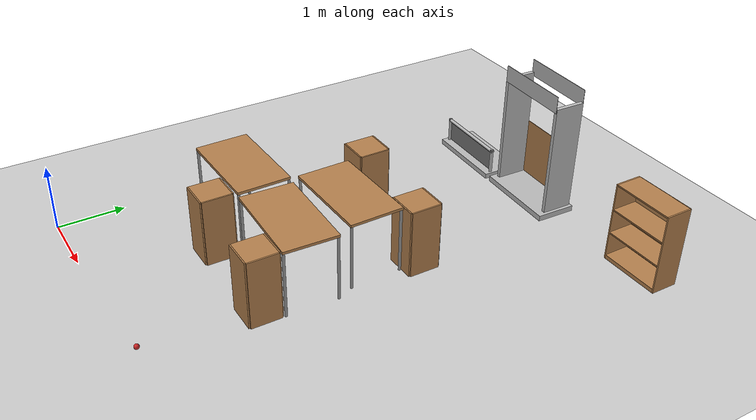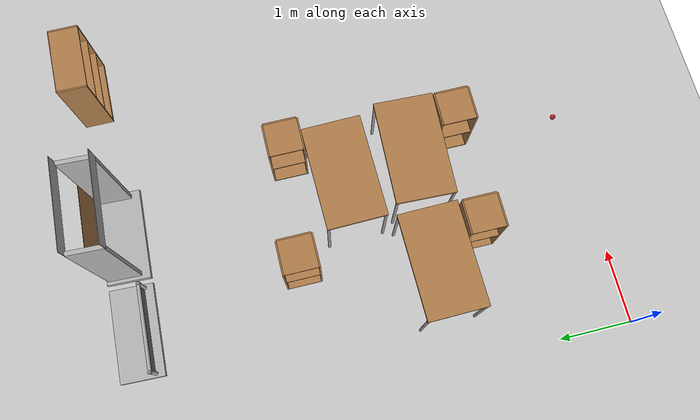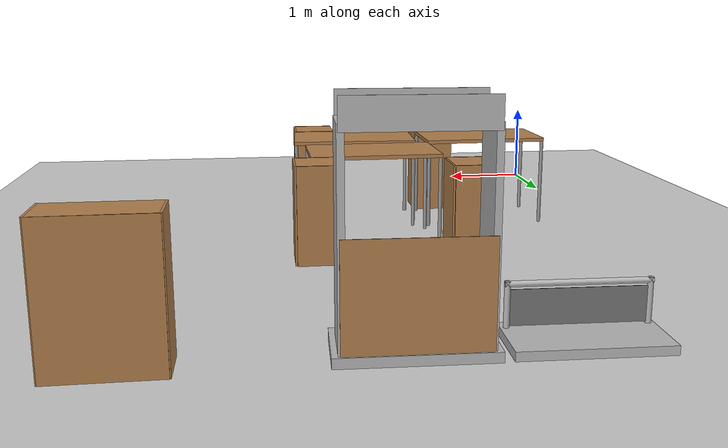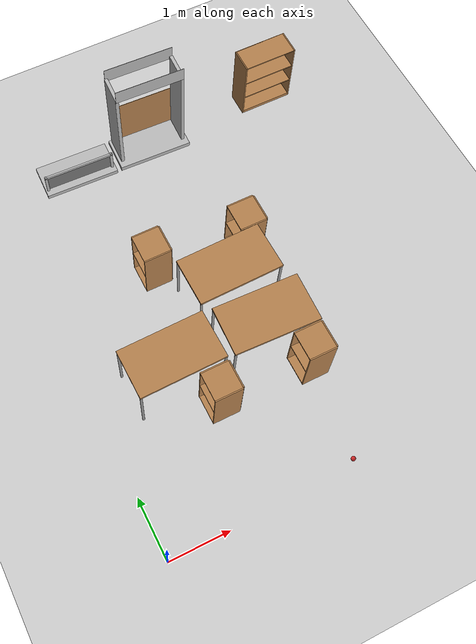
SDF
<sdf version="1.6">
 <world name="default">
  <model name="ground_plane">
   <static>1</static>
   <link name="link">
    <collision name="collision">
     <geometry><plane><normal>0 0 1</normal><size>100 100</size></plane></geometry>
     <surface><friction><ode><mu>100</mu><mu2>50</mu2></ode></friction></surface>
    </collision>
    <visual name="visual">
     <cast_shadows>0</cast_shadows>
     <geometry><plane><normal>0 0 1</normal><size>100 100</size></plane></geometry>
     <material>
      <script><uri>file://media/materials/scripts/gazebo.material</uri><name>Gazebo/Grey</name></script>
     </material>
    </visual>
   </link>
  </model>
  <model name="table_7_clone_1">
   <static>0</static>
   <link name="link">
    <collision name="surface">
     <pose>0 0 1 0 -0 0</pose>
     <geometry><box><size>1.5 0.8 0.03</size></box></geometry>
     <surface><friction><ode><mu>0.6</mu><mu2>0.6</mu2></ode></friction></surface>
    </collision>
    <visual name="visual1">
     <pose>0 0 1 0 -0 0</pose>
     <geometry><box><size>1.4 0.8 0.04</size></box></geometry>
     <material>
      <script><uri>file://media/materials/scripts/gazebo.material</uri><name>Gazebo/Wood</name></script>
     </material>
    </visual>
    <collision name="front_left_leg">
     <pose>0.68 0.38 0.5 0 -0 0</pose>
     <geometry><cylinder><radius>0.02</radius><length>1</length></cylinder></geometry>
    </collision>
    <visual name="front_left_leg">
     <pose>0.68 0.38 0.5 0 -0 0</pose>
     <geometry><cylinder><radius>0.02</radius><length>1</length></cylinder></geometry>
     <material>
      <script><uri>file://media/materials/scripts/gazebo.material</uri><name>Gazebo/Grey</name></script>
     </material>
    </visual>
    <collision name="front_right_leg">
     <pose>0.68 -0.38 0.5 0 -0 0</pose>
     <geometry><cylinder><radius>0.02</radius><length>1</length></cylinder></geometry>
    </collision>
    <visual name="front_right_leg">
     <pose>0.68 -0.38 0.5 0 -0 0</pose>
     <geometry><cylinder><radius>0.02</radius><length>1</length></cylinder></geometry>
     <material>
      <script><uri>file://media/materials/scripts/gazebo.material</uri><name>Gazebo/Grey</name></script>
     </material>
    </visual>
    <collision name="back_right_leg">
     <pose>-0.68 -0.38 0.5 0 -0 0</pose>
     <geometry><cylinder><radius>0.02</radius><length>1</length></cylinder></geometry>
    </collision>
    <visual name="back_right_leg">
     <pose>-0.68 -0.38 0.5 0 -0 0</pose>
     <geometry><cylinder><radius>0.02</radius><length>1</length></cylinder></geometry>
     <material>
      <script><uri>file://media/materials/scripts/gazebo.material</uri><name>Gazebo/Grey</name></script>
     </material>
    </visual>
    <collision name="back_left_leg">
     <pose>-0.68 0.38 0.5 0 -0 0</pose>
     <geometry><cylinder><radius>0.02</radius><length>1</length></cylinder></geometry>
    </collision>
    <visual name="back_left_leg">
     <pose>-0.68 0.38 0.5 0 -0 0</pose>
     <geometry><cylinder><radius>0.02</radius><length>1</length></cylinder></geometry>
     <material>
      <script><uri>file://media/materials/scripts/gazebo.material</uri><name>Gazebo/Grey</name></script>
     </material>
    </visual>
    <inertial>
     <inertia><ixx>1</ixx><ixy>0</ixy><ixz>0</ixz><iyy>1</iyy><iyz>0</iyz><izz>1</izz></inertia>
     <mass>1</mass>
    </inertial>
   </link>
   <pose>1.25203 2.42217 -9e-06 0 -1e-06 0.016683</pose>
  </model>
  <model name="bookshelf">
   <static>1</static>
   <link name="link">
    <inertial><mass>1</mass></inertial>
    <collision name="back">
     <pose>0 0.005 0.6 0 -0 0</pose>
     <geometry><box><size>0.9 0.01 1.2</size></box></geometry>
    </collision>
    <visual name="visual1">
     <pose>0 0.005 0.6 0 -0 0</pose>
     <geometry><box><size>0.9 0.01 1.2</size></box></geometry>
     <material>
      <script><uri>file://media/materials/scripts/gazebo.material</uri><name>Gazebo/Wood</name></script>
     </material>
    </visual>
    <collision name="left_side">
     <pose>0.45 -0.195 0.6 0 -0 0</pose>
     <geometry><box><size>0.02 0.4 1.2</size></box></geometry>
    </collision>
    <visual name="visual2">
     <pose>0.45 -0.195 0.6 0 -0 0</pose>
     <geometry><box><size>0.02 0.4 1.2</size></box></geometry>
     <material>
      <script><uri>file://media/materials/scripts/gazebo.material</uri><name>Gazebo/Wood</name></script>
     </material>
    </visual>
    <collision name="right_side">
     <pose>-0.45 -0.195 0.6 0 -0 0</pose>
     <geometry><box><size>0.02 0.4 1.2</size></box></geometry>
    </collision>
    <visual name="visual3">
     <pose>-0.45 -0.195 0.6 0 -0 0</pose>
     <geometry><box><size>0.02 0.4 1.2</size></box></geometry>
     <material>
      <script><uri>file://media/materials/scripts/gazebo.material</uri><name>Gazebo/Wood</name></script>
     </material>
    </visual>
    <collision name="bottom">
     <pose>0 -0.195 0.03 0 -0 0</pose>
     <geometry><box><size>0.88 0.4 0.06</size></box></geometry>
    </collision>
    <visual name="visual4">
     <pose>0 -0.195 0.03 0 -0 0</pose>
     <geometry><box><size>0.88 0.4 0.06</size></box></geometry>
     <material>
      <script><uri>file://media/materials/scripts/gazebo.material</uri><name>Gazebo/Wood</name></script>
     </material>
    </visual>
    <collision name="top">
     <pose>0 -0.195 1.19 0 -0 0</pose>
     <geometry><box><size>0.88 0.4 0.02</size></box></geometry>
    </collision>
    <visual name="visual5">
     <pose>0 -0.195 1.19 0 -0 0</pose>
     <geometry><box><size>0.88 0.4 0.02</size></box></geometry>
     <material>
      <script><uri>file://media/materials/scripts/gazebo.material</uri><name>Gazebo/Wood</name></script>
     </material>
    </visual>
    <collision name="low_shelf">
     <pose>0 -0.195 0.43 0 -0 0</pose>
     <geometry><box><size>0.88 0.4 0.02</size></box></geometry>
    </collision>
    <visual name="visual6">
     <pose>0 -0.195 0.43 0 -0 0</pose>
     <geometry><box><size>0.88 0.4 0.02</size></box></geometry>
     <material>
      <script><uri>file://media/materials/scripts/gazebo.material</uri><name>Gazebo/Wood</name></script>
     </material>
    </visual>
    <collision name="high_shelf">
     <pose>0 -0.195 0.8 0 -0 0</pose>
     <geometry><box><size>0.88 0.4 0.02</size></box></geometry>
    </collision>
    <visual name="visual7">
     <pose>0 -0.195 0.8 0 -0 0</pose>
     <geometry><box><size>0.88 0.4 0.02</size></box></geometry>
     <material>
      <script><uri>file://media/materials/scripts/gazebo.material</uri><name>Gazebo/Wood</name></script>
     </material>
    </visual>
   </link>
   <pose>4.99044 6.73324 0 0 -0 0</pose>
  </model>
  <model name="table_7_clone_clone">
   <static>0</static>
   <link name="link">
    <collision name="surface">
     <pose>0 0 1 0 -0 0</pose>
     <geometry><box><size>1.5 0.8 0.03</size></box></geometry>
     <surface><friction><ode><mu>0.6</mu><mu2>0.6</mu2></ode></friction></surface>
    </collision>
    <visual name="visual1">
     <pose>0 0 1 0 -0 0</pose>
     <geometry><box><size>1.4 0.8 0.04</size></box></geometry>
     <material>
      <script><uri>file://media/materials/scripts/gazebo.material</uri><name>Gazebo/Wood</name></script>
     </material>
    </visual>
    <collision name="front_left_leg">
     <pose>0.68 0.38 0.5 0 -0 0</pose>
     <geometry><cylinder><radius>0.02</radius><length>1</length></cylinder></geometry>
    </collision>
    <visual name="front_left_leg">
     <pose>0.68 0.38 0.5 0 -0 0</pose>
     <geometry><cylinder><radius>0.02</radius><length>1</length></cylinder></geometry>
     <material>
      <script><uri>file://media/materials/scripts/gazebo.material</uri><name>Gazebo/Grey</name></script>
     </material>
    </visual>
    <collision name="front_right_leg">
     <pose>0.68 -0.38 0.5 0 -0 0</pose>
     <geometry><cylinder><radius>0.02</radius><length>1</length></cylinder></geometry>
    </collision>
    <visual name="front_right_leg">
     <pose>0.68 -0.38 0.5 0 -0 0</pose>
     <geometry><cylinder><radius>0.02</radius><length>1</length></cylinder></geometry>
     <material>
      <script><uri>file://media/materials/scripts/gazebo.material</uri><name>Gazebo/Grey</name></script>
     </material>
    </visual>
    <collision name="back_right_leg">
     <pose>-0.68 -0.38 0.5 0 -0 0</pose>
     <geometry><cylinder><radius>0.02</radius><length>1</length></cylinder></geometry>
    </collision>
    <visual name="back_right_leg">
     <pose>-0.68 -0.38 0.5 0 -0 0</pose>
     <geometry><cylinder><radius>0.02</radius><length>1</length></cylinder></geometry>
     <material>
      <script><uri>file://media/materials/scripts/gazebo.material</uri><name>Gazebo/Grey</name></script>
     </material>
    </visual>
    <collision name="back_left_leg">
     <pose>-0.68 0.38 0.5 0 -0 0</pose>
     <geometry><cylinder><radius>0.02</radius><length>1</length></cylinder></geometry>
    </collision>
    <visual name="back_left_leg">
     <pose>-0.68 0.38 0.5 0 -0 0</pose>
     <geometry><cylinder><radius>0.02</radius><length>1</length></cylinder></geometry>
     <material>
      <script><uri>file://media/materials/scripts/gazebo.material</uri><name>Gazebo/Grey</name></script>
     </material>
    </visual>
    <inertial>
     <inertia><ixx>1</ixx><ixy>0</ixy><ixz>0</ixz><iyy>1</iyy><iyz>0</iyz><izz>1</izz></inertia>
     <mass>1</mass>
    </inertial>
   </link>
   <pose>2.66752 3.34622 -3e-06 -0 4e-06 0.020176</pose>
  </model>
  <model name="table_7_clone_clone_0">
   <static>0</static>
   <link name="link">
    <collision name="surface">
     <pose>0 0 1 0 -0 0</pose>
     <geometry><box><size>1.5 0.8 0.03</size></box></geometry>
     <surface><friction><ode><mu>0.6</mu><mu2>0.6</mu2></ode></friction></surface>
    </collision>
    <visual name="visual1">
     <pose>0 0 1 0 -0 0</pose>
     <geometry><box><size>1.4 0.8 0.04</size></box></geometry>
     <material>
      <script><uri>file://media/materials/scripts/gazebo.material</uri><name>Gazebo/Wood</name></script>
     </material>
    </visual>
    <collision name="front_left_leg">
     <pose>0.68 0.38 0.5 0 -0 0</pose>
     <geometry><cylinder><radius>0.02</radius><length>1</length></cylinder></geometry>
    </collision>
    <visual name="front_left_leg">
     <pose>0.68 0.38 0.5 0 -0 0</pose>
     <geometry><cylinder><radius>0.02</radius><length>1</length></cylinder></geometry>
     <material>
      <script><uri>file://media/materials/scripts/gazebo.material</uri><name>Gazebo/Grey</name></script>
     </material>
    </visual>
    <collision name="front_right_leg">
     <pose>0.68 -0.38 0.5 0 -0 0</pose>
     <geometry><cylinder><radius>0.02</radius><length>1</length></cylinder></geometry>
    </collision>
    <visual name="front_right_leg">
     <pose>0.68 -0.38 0.5 0 -0 0</pose>
     <geometry><cylinder><radius>0.02</radius><length>1</length></cylinder></geometry>
     <material>
      <script><uri>file://media/materials/scripts/gazebo.material</uri><name>Gazebo/Grey</name></script>
     </material>
    </visual>
    <collision name="back_right_leg">
     <pose>-0.68 -0.38 0.5 0 -0 0</pose>
     <geometry><cylinder><radius>0.02</radius><length>1</length></cylinder></geometry>
    </collision>
    <visual name="back_right_leg">
     <pose>-0.68 -0.38 0.5 0 -0 0</pose>
     <geometry><cylinder><radius>0.02</radius><length>1</length></cylinder></geometry>
     <material>
      <script><uri>file://media/materials/scripts/gazebo.material</uri><name>Gazebo/Grey</name></script>
     </material>
    </visual>
    <collision name="back_left_leg">
     <pose>-0.68 0.38 0.5 0 -0 0</pose>
     <geometry><cylinder><radius>0.02</radius><length>1</length></cylinder></geometry>
    </collision>
    <visual name="back_left_leg">
     <pose>-0.68 0.38 0.5 0 -0 0</pose>
     <geometry><cylinder><radius>0.02</radius><length>1</length></cylinder></geometry>
     <material>
      <script><uri>file://media/materials/scripts/gazebo.material</uri><name>Gazebo/Grey</name></script>
     </material>
    </visual>
    <inertial>
     <inertia><ixx>1</ixx><ixy>0</ixy><ixz>0</ixz><iyy>1</iyy><iyz>0</iyz><izz>1</izz></inertia>
     <mass>1</mass>
    </inertial>
   </link>
   <pose>2.77229 2.37468 -9e-06 0 -1e-06 -0.036907</pose>
  </model>
  <model name="frc2016_drawbridge">
   <link name="base">
    <inertial>
     <mass>10</mass>
     <pose>0 0 1 0 -0 0</pose>
     <inertia><ixx>3.64907</ixx><ixy>0</ixy><ixz>0</ixz><iyy>4.67075</iyy><iyz>0</iyz><izz>1.66649</izz></inertia>
    </inertial>
    <visual name="platform">
     <pose>0 0 0.0425 0 -0 0</pose>
     <geometry><box><size>1.27 0.5969 0.085</size></box></geometry>
    </visual>
    <collision name="platform">
     <pose>0 0 0.0425 0 -0 0</pose>
     <geometry><box><size>1.27 0.5969 0.085</size></box></geometry>
    </collision>
    <visual name="right_wall">
     <pose>0.55879 0.04444 0.889 0 -0 0</pose>
     <geometry><box><size>0.05715 0.45698 1.77165</size></box></geometry>
    </visual>
    <collision name="right_wall">
     <pose>0.55879 0.04444 0.889 0 -0 0</pose>
     <geometry><box><size>0.05715 0.45698 1.77165</size></box></geometry>
    </collision>
    <visual name="left_wall">
     <pose>-0.55879 0.04444 0.889 0 -0 0</pose>
     <geometry><box><size>0.05715 0.45698 1.77165</size></box></geometry>
    </visual>
    <collision name="left_wall">
     <pose>-0.55879 0.04444 0.889 0 -0 0</pose>
     <geometry><box><size>0.05715 0.45698 1.77165</size></box></geometry>
    </collision>
    <visual name="front_upper_wall">
     <pose>0 0.27611 1.84286 0 -0 0</pose>
     <geometry><box><size>1.1557 0.006347 0.254</size></box></geometry>
    </visual>
    <collision name="front_upper_wall">
     <pose>0 0.27611 1.84286 0 -0 0</pose>
     <geometry><box><size>1.1557 0.006347 0.254</size></box></geometry>
    </collision>
    <visual name="back_upper_wall">
     <pose>0 -0.18722 1.84286 0 -0 0</pose>
     <geometry><box><size>1.1557 0.006347 0.254</size></box></geometry>
    </visual>
    <collision name="back_upper_wall">
     <pose>0 -0.18722 1.84286 0 -0 0</pose>
     <geometry><box><size>1.1557 0.006347 0.254</size></box></geometry>
    </collision>
   </link>
   <link name="bridge">
    <pose>0 0.28245 0.50577 0 -0 0</pose>
    <inertial>
     <mass>2</mass>
     <pose>0 -0.28245 -0.50577 0 -0 0</pose>
     <inertia>
      <ixx>0.139361</ixx>
      <ixy>0</ixy>
      <ixz>0</ixz>
      <iyy>0.357088</iyy>
      <iyz>0</iyz>
      <izz>0.217741</izz>
     </inertia>
    </inertial>
    <visual name="visual">
     <geometry><box><size>1.14298 0.006347 0.9144</size></box></geometry>
     <material><script><name>Gazebo/WoodFloor</name><uri>__default__</uri></script></material>
    </visual>
    <collision name="collision"><geometry><box><size>1.14298 0.006347 0.9144</size></box></geometry></collision>
   </link>
   <joint name="bridge_joint" type="revolute">
    <pose>0 0 -0.4172 0 -0 0</pose>
    <parent>base</parent>
    <child>bridge</child>
    <axis>
     <xyz>1 0 0</xyz>
     <limit><lower>-2</lower><upper>0</upper></limit>
     <use_parent_model_frame>0</use_parent_model_frame>
     <dynamics><spring_reference>0</spring_reference><spring_stiffness>0</spring_stiffness></dynamics>
    </axis>
   </joint>
   <pose>2.75926 6.45787 -3e-06 1e-06 4e-06 -0.036476</pose>
  </model>
  <model name="frc2016_lowbar">
   <link name="base">
    <inertial>
     <mass>50</mass>
     <inertia>
      <ixx>0.035543</ixx>
      <ixy>0</ixy>
      <ixz>0</ixz>
      <iyy>0.134412</iyy>
      <iyz>0</iyz>
      <izz>0.165376</izz>
     </inertia>
    </inertial>
    <visual name="platform">
     <pose>0 0 0.039065 0 -0 0</pose>
     <geometry><box><size>1.26 0.5996 0.07813</size></box></geometry>
    </visual>
    <collision name="platform">
     <pose>0 0 0.039065 0 -0 0</pose>
     <geometry><box><size>1.27 0.6096 0.07813</size></box></geometry>
    </collision>
    <visual name="right_column">
     <pose>-0.57845 -0.18464 0.26863 0 -0 0</pose>
     <geometry><cylinder><radius>0.0254</radius><length>0.381</length></cylinder></geometry>
    </visual>
    <collision name="right_column">
     <pose>-0.57845 -0.18464 0.26863 0 -0 0</pose>
     <geometry><cylinder><radius>0.0254</radius><length>0.381</length></cylinder></geometry>
    </collision>
    <visual name="left_column">
     <pose>0.57845 -0.18464 0.26863 0 -0 0</pose>
     <geometry><cylinder><radius>0.0254</radius><length>0.381</length></cylinder></geometry>
    </visual>
    <collision name="left_column">
     <pose>0.57845 -0.18464 0.26863 0 -0 0</pose>
     <geometry><cylinder><radius>0.0254</radius><length>0.381</length></cylinder></geometry>
    </collision>
    <visual name="horizontal">
     <pose>0 -0.18464 0.43556 0 1.5707 0</pose>
     <geometry><cylinder><radius>0.0254</radius><length>1.2018</length></cylinder></geometry>
    </visual>
    <collision name="horizontal">
     <pose>0 -0.18464 0.43556 0 1.5707 0</pose>
     <geometry><cylinder><radius>0.0254</radius><length>1.2018</length></cylinder></geometry>
    </collision>
   </link>
   <link name="wall">
    <pose>0 -0.1778 0.24323 0 -0 0</pose>
    <inertial>
     <mass>1</mass>
     <inertia>
      <ixx>0.00774528</ixx>
      <ixy>0</ixy>
      <ixz>0</ixz>
      <iyy>0.116613</iyy>
      <iyz>0</iyz>
      <izz>0.108874</izz>
     </inertia>
    </inertial>
    <visual name="visual">
     <geometry><box><size>1.1176 0.00635 0.3</size></box></geometry>
     <material><ambient>0.46 0.46 0.46 1</ambient><diffuse>0.46 0.46 0.46 1</diffuse></material>
    </visual>
    <collision name="collision"><geometry><box><size>1.143 0.00635 0.3</size></box></geometry></collision>
   </link>
   <joint name="bar_joint" type="revolute">
    <pose>0 0 0.36378 0 -0 0</pose>
    <parent>base</parent>
    <child>wall</child>
    <axis>
     <xyz>1 0 0</xyz>
     <limit><lower>-1.5707</lower><upper>1.5707</upper></limit>
     <use_parent_model_frame>0</use_parent_model_frame>
     <dynamics><spring_reference>0</spring_reference><spring_stiffness>0</spring_stiffness></dynamics>
    </axis>
   </joint>
   <pose>1.4152 6.4935 -1.6e-05 8e-06 -5.3e-05 -0.034095</pose>
  </model>
  <model name="cabinet">
   <static>1</static>
   <link name="cabinet_bottom_plate">
    <inertial>
     <pose>0 0 -1 0 -0 0</pose>
     <inertia><ixx>2.05</ixx><ixy>0</ixy><ixz>0</ixz><iyy>2.05</iyy><iyz>0</iyz><izz>2.05</izz></inertia>
     <mass>25</mass>
    </inertial>
    <collision name="cabinet_bottom_plate_geom">
     <pose>0 0 0.01 0 -0 0</pose>
     <geometry><box><size>0.45 0.45 0.02</size></box></geometry>
    </collision>
    <visual name="cabinet_bottom_plate_geom_visual">
     <pose>0 0 0.01 0 -0 0</pose>
     <geometry><box><size>0.45 0.45 0.02</size></box></geometry>
     <material>
      <script><uri>file://media/materials/scripts/gazebo.material</uri><name>Gazebo/Wood</name></script>
     </material>
    </visual>
    <collision name="cabinet_bottom_plate_geom_cabinet_back_plate">
     <pose>0.235 0 0.51 0 -0 0</pose>
     <geometry><box><size>0.02 0.45 1.02</size></box></geometry>
    </collision>
    <visual name="cabinet_bottom_plate_geom_cabinet_back_plate_visual">
     <pose>0.235 0 0.51 0 -0 0</pose>
     <geometry><box><size>0.02 0.45 1.02</size></box></geometry>
     <material>
      <script><uri>file://media/materials/scripts/gazebo.material</uri><name>Gazebo/Wood</name></script>
     </material>
    </visual>
    <collision name="cabinet_bottom_plate_geom_cabinet_left_plate">
     <pose>0 0.235 0.51 0 -0 0</pose>
     <geometry><box><size>0.45 0.02 1.02</size></box></geometry>
    </collision>
    <visual name="cabinet_bottom_plate_geom_cabinet_left_plate_visual">
     <pose>0 0.235 0.51 0 -0 0</pose>
     <geometry><box><size>0.45 0.02 1.02</size></box></geometry>
     <material>
      <script><uri>file://media/materials/scripts/gazebo.material</uri><name>Gazebo/Wood</name></script>
     </material>
    </visual>
    <collision name="cabinet_bottom_plate_geom_cabinet_middle_plate">
     <pose>0 0 0.51 0 -0 0</pose>
     <geometry><box><size>0.45 0.45 0.02</size></box></geometry>
    </collision>
    <visual name="cabinet_bottom_plate_geom_cabinet_middle_plate_visual">
     <pose>0 0 0.51 0 -0 0</pose>
     <geometry><box><size>0.45 0.45 0.02</size></box></geometry>
     <material>
      <script><uri>file://media/materials/scripts/gazebo.material</uri><name>Gazebo/Wood</name></script>
     </material>
    </visual>
    <collision name="cabinet_bottom_plate_geom_cabinet_right_plate">
     <pose>0 -0.235 0.51 0 -0 0</pose>
     <geometry><box><size>0.45 0.02 1.02</size></box></geometry>
    </collision>
    <visual name="cabinet_bottom_plate_geom_cabinet_right_plate_visual">
     <pose>0 -0.235 0.51 0 -0 0</pose>
     <geometry><box><size>0.45 0.02 1.02</size></box></geometry>
     <material>
      <script><uri>file://media/materials/scripts/gazebo.material</uri><name>Gazebo/Wood</name></script>
     </material>
    </visual>
    <collision name="cabinet_bottom_plate_geom_cabinet_top_plate">
     <pose>0 0 1.01 0 -0 0</pose>
     <geometry><box><size>0.45 0.45 0.02</size></box></geometry>
    </collision>
    <visual name="cabinet_bottom_plate_geom_cabinet_top_plate_visual">
     <pose>0 0 1.01 0 -0 0</pose>
     <geometry><box><size>0.45 0.45 0.02</size></box></geometry>
     <material>
      <script><uri>file://media/materials/scripts/gazebo.material</uri><name>Gazebo/Wood</name></script>
     </material>
    </visual>
   </link>
   <pose>3.20418 1.69605 0 0 -0 0</pose>
  </model>
  <model name="cabinet_clone">
   <static>1</static>
   <link name="cabinet_bottom_plate">
    <inertial>
     <pose>0 0 -1 0 -0 0</pose>
     <inertia><ixx>2.05</ixx><ixy>0</ixy><ixz>0</ixz><iyy>2.05</iyy><iyz>0</iyz><izz>2.05</izz></inertia>
     <mass>25</mass>
    </inertial>
    <collision name="cabinet_bottom_plate_geom">
     <pose>0 0 0.01 0 -0 0</pose>
     <geometry><box><size>0.45 0.45 0.02</size></box></geometry>
    </collision>
    <visual name="cabinet_bottom_plate_geom_visual">
     <pose>0 0 0.01 0 -0 0</pose>
     <geometry><box><size>0.45 0.45 0.02</size></box></geometry>
     <material>
      <script><uri>file://media/materials/scripts/gazebo.material</uri><name>Gazebo/Wood</name></script>
     </material>
    </visual>
    <collision name="cabinet_bottom_plate_geom_cabinet_back_plate">
     <pose>0.235 0 0.51 0 -0 0</pose>
     <geometry><box><size>0.02 0.45 1.02</size></box></geometry>
    </collision>
    <visual name="cabinet_bottom_plate_geom_cabinet_back_plate_visual">
     <pose>0.235 0 0.51 0 -0 0</pose>
     <geometry><box><size>0.02 0.45 1.02</size></box></geometry>
     <material>
      <script><uri>file://media/materials/scripts/gazebo.material</uri><name>Gazebo/Wood</name></script>
     </material>
    </visual>
    <collision name="cabinet_bottom_plate_geom_cabinet_left_plate">
     <pose>0 0.235 0.51 0 -0 0</pose>
     <geometry><box><size>0.45 0.02 1.02</size></box></geometry>
    </collision>
    <visual name="cabinet_bottom_plate_geom_cabinet_left_plate_visual">
     <pose>0 0.235 0.51 0 -0 0</pose>
     <geometry><box><size>0.45 0.02 1.02</size></box></geometry>
     <material>
      <script><uri>file://media/materials/scripts/gazebo.material</uri><name>Gazebo/Wood</name></script>
     </material>
    </visual>
    <collision name="cabinet_bottom_plate_geom_cabinet_middle_plate">
     <pose>0 0 0.51 0 -0 0</pose>
     <geometry><box><size>0.45 0.45 0.02</size></box></geometry>
    </collision>
    <visual name="cabinet_bottom_plate_geom_cabinet_middle_plate_visual">
     <pose>0 0 0.51 0 -0 0</pose>
     <geometry><box><size>0.45 0.45 0.02</size></box></geometry>
     <material>
      <script><uri>file://media/materials/scripts/gazebo.material</uri><name>Gazebo/Wood</name></script>
     </material>
    </visual>
    <collision name="cabinet_bottom_plate_geom_cabinet_right_plate">
     <pose>0 -0.235 0.51 0 -0 0</pose>
     <geometry><box><size>0.45 0.02 1.02</size></box></geometry>
    </collision>
    <visual name="cabinet_bottom_plate_geom_cabinet_right_plate_visual">
     <pose>0 -0.235 0.51 0 -0 0</pose>
     <geometry><box><size>0.45 0.02 1.02</size></box></geometry>
     <material>
      <script><uri>file://media/materials/scripts/gazebo.material</uri><name>Gazebo/Wood</name></script>
     </material>
    </visual>
    <collision name="cabinet_bottom_plate_geom_cabinet_top_plate">
     <pose>0 0 1.01 0 -0 0</pose>
     <geometry><box><size>0.45 0.45 0.02</size></box></geometry>
    </collision>
    <visual name="cabinet_bottom_plate_geom_cabinet_top_plate_visual">
     <pose>0 0 1.01 0 -0 0</pose>
     <geometry><box><size>0.45 0.45 0.02</size></box></geometry>
     <material>
      <script><uri>file://media/materials/scripts/gazebo.material</uri><name>Gazebo/Wood</name></script>
     </material>
    </visual>
   </link>
   <pose>1.7045 1.74376 0 0 -0 0</pose>
  </model>
  <model name="cabinet_clone_1">
   <static>1</static>
   <link name="cabinet_bottom_plate">
    <inertial>
     <pose>0 0 -1 0 -0 0</pose>
     <inertia><ixx>2.05</ixx><ixy>0</ixy><ixz>0</ixz><iyy>2.05</iyy><iyz>0</iyz><izz>2.05</izz></inertia>
     <mass>25</mass>
    </inertial>
    <collision name="cabinet_bottom_plate_geom">
     <pose>0 0 0.01 0 -0 0</pose>
     <geometry><box><size>0.45 0.45 0.02</size></box></geometry>
    </collision>
    <visual name="cabinet_bottom_plate_geom_visual">
     <pose>0 0 0.01 0 -0 0</pose>
     <geometry><box><size>0.45 0.45 0.02</size></box></geometry>
     <material>
      <script><uri>file://media/materials/scripts/gazebo.material</uri><name>Gazebo/Wood</name></script>
     </material>
    </visual>
    <collision name="cabinet_bottom_plate_geom_cabinet_back_plate">
     <pose>0.235 0 0.51 0 -0 0</pose>
     <geometry><box><size>0.02 0.45 1.02</size></box></geometry>
    </collision>
    <visual name="cabinet_bottom_plate_geom_cabinet_back_plate_visual">
     <pose>0.235 0 0.51 0 -0 0</pose>
     <geometry><box><size>0.02 0.45 1.02</size></box></geometry>
     <material>
      <script><uri>file://media/materials/scripts/gazebo.material</uri><name>Gazebo/Wood</name></script>
     </material>
    </visual>
    <collision name="cabinet_bottom_plate_geom_cabinet_left_plate">
     <pose>0 0.235 0.51 0 -0 0</pose>
     <geometry><box><size>0.45 0.02 1.02</size></box></geometry>
    </collision>
    <visual name="cabinet_bottom_plate_geom_cabinet_left_plate_visual">
     <pose>0 0.235 0.51 0 -0 0</pose>
     <geometry><box><size>0.45 0.02 1.02</size></box></geometry>
     <material>
      <script><uri>file://media/materials/scripts/gazebo.material</uri><name>Gazebo/Wood</name></script>
     </material>
    </visual>
    <collision name="cabinet_bottom_plate_geom_cabinet_middle_plate">
     <pose>0 0 0.51 0 -0 0</pose>
     <geometry><box><size>0.45 0.45 0.02</size></box></geometry>
    </collision>
    <visual name="cabinet_bottom_plate_geom_cabinet_middle_plate_visual">
     <pose>0 0 0.51 0 -0 0</pose>
     <geometry><box><size>0.45 0.45 0.02</size></box></geometry>
     <material>
      <script><uri>file://media/materials/scripts/gazebo.material</uri><name>Gazebo/Wood</name></script>
     </material>
    </visual>
    <collision name="cabinet_bottom_plate_geom_cabinet_right_plate">
     <pose>0 -0.235 0.51 0 -0 0</pose>
     <geometry><box><size>0.45 0.02 1.02</size></box></geometry>
    </collision>
    <visual name="cabinet_bottom_plate_geom_cabinet_right_plate_visual">
     <pose>0 -0.235 0.51 0 -0 0</pose>
     <geometry><box><size>0.45 0.02 1.02</size></box></geometry>
     <material>
      <script><uri>file://media/materials/scripts/gazebo.material</uri><name>Gazebo/Wood</name></script>
     </material>
    </visual>
    <collision name="cabinet_bottom_plate_geom_cabinet_top_plate">
     <pose>0 0 1.01 0 -0 0</pose>
     <geometry><box><size>0.45 0.45 0.02</size></box></geometry>
    </collision>
    <visual name="cabinet_bottom_plate_geom_cabinet_top_plate_visual">
     <pose>0 0 1.01 0 -0 0</pose>
     <geometry><box><size>0.45 0.45 0.02</size></box></geometry>
     <material>
      <script><uri>file://media/materials/scripts/gazebo.material</uri><name>Gazebo/Wood</name></script>
     </material>
    </visual>
   </link>
   <pose>3.30951 4.00627 0 0 -0 0</pose>
  </model>
  <model name="cabinet_clone_2">
   <static>1</static>
   <link name="cabinet_bottom_plate">
    <inertial>
     <pose>0 0 -1 0 -0 0</pose>
     <inertia><ixx>2.05</ixx><ixy>0</ixy><ixz>0</ixz><iyy>2.05</iyy><iyz>0</iyz><izz>2.05</izz></inertia>
     <mass>25</mass>
    </inertial>
    <collision name="cabinet_bottom_plate_geom">
     <pose>0 0 0.01 0 -0 0</pose>
     <geometry><box><size>0.45 0.45 0.02</size></box></geometry>
    </collision>
    <visual name="cabinet_bottom_plate_geom_visual">
     <pose>0 0 0.01 0 -0 0</pose>
     <geometry><box><size>0.45 0.45 0.02</size></box></geometry>
     <material>
      <script><uri>file://media/materials/scripts/gazebo.material</uri><name>Gazebo/Wood</name></script>
     </material>
    </visual>
    <collision name="cabinet_bottom_plate_geom_cabinet_back_plate">
     <pose>0.235 0 0.51 0 -0 0</pose>
     <geometry><box><size>0.02 0.45 1.02</size></box></geometry>
    </collision>
    <visual name="cabinet_bottom_plate_geom_cabinet_back_plate_visual">
     <pose>0.235 0 0.51 0 -0 0</pose>
     <geometry><box><size>0.02 0.45 1.02</size></box></geometry>
     <material>
      <script><uri>file://media/materials/scripts/gazebo.material</uri><name>Gazebo/Wood</name></script>
     </material>
    </visual>
    <collision name="cabinet_bottom_plate_geom_cabinet_left_plate">
     <pose>0 0.235 0.51 0 -0 0</pose>
     <geometry><box><size>0.45 0.02 1.02</size></box></geometry>
    </collision>
    <visual name="cabinet_bottom_plate_geom_cabinet_left_plate_visual">
     <pose>0 0.235 0.51 0 -0 0</pose>
     <geometry><box><size>0.45 0.02 1.02</size></box></geometry>
     <material>
      <script><uri>file://media/materials/scripts/gazebo.material</uri><name>Gazebo/Wood</name></script>
     </material>
    </visual>
    <collision name="cabinet_bottom_plate_geom_cabinet_middle_plate">
     <pose>0 0 0.51 0 -0 0</pose>
     <geometry><box><size>0.45 0.45 0.02</size></box></geometry>
    </collision>
    <visual name="cabinet_bottom_plate_geom_cabinet_middle_plate_visual">
     <pose>0 0 0.51 0 -0 0</pose>
     <geometry><box><size>0.45 0.45 0.02</size></box></geometry>
     <material>
      <script><uri>file://media/materials/scripts/gazebo.material</uri><name>Gazebo/Wood</name></script>
     </material>
    </visual>
    <collision name="cabinet_bottom_plate_geom_cabinet_right_plate">
     <pose>0 -0.235 0.51 0 -0 0</pose>
     <geometry><box><size>0.45 0.02 1.02</size></box></geometry>
    </collision>
    <visual name="cabinet_bottom_plate_geom_cabinet_right_plate_visual">
     <pose>0 -0.235 0.51 0 -0 0</pose>
     <geometry><box><size>0.45 0.02 1.02</size></box></geometry>
     <material>
      <script><uri>file://media/materials/scripts/gazebo.material</uri><name>Gazebo/Wood</name></script>
     </material>
    </visual>
    <collision name="cabinet_bottom_plate_geom_cabinet_top_plate">
     <pose>0 0 1.01 0 -0 0</pose>
     <geometry><box><size>0.45 0.45 0.02</size></box></geometry>
    </collision>
    <visual name="cabinet_bottom_plate_geom_cabinet_top_plate_visual">
     <pose>0 0 1.01 0 -0 0</pose>
     <geometry><box><size>0.45 0.45 0.02</size></box></geometry>
     <material>
      <script><uri>file://media/materials/scripts/gazebo.material</uri><name>Gazebo/Wood</name></script>
     </material>
    </visual>
   </link>
   <pose>1.74842 4.16375 0 0 -0 0</pose>
  </model>
  <model name="cricket_ball_0_0">
   <link name="link">
    <pose>0 0 0.0375 0 -0 0</pose>
    <inertial>
     <mass>0.1467</mass>
     <inertia>
      <ixx>8.252e-05</ixx>
      <ixy>0</ixy>
      <ixz>0</ixz>
      <iyy>8.252e-05</iyy>
      <iyz>0</iyz>
      <izz>8.252e-05</izz>
     </inertia>
    </inertial>
    <velocity_decay><linear>0</linear><angular>0.005</angular></velocity_decay>
    <visual name="visual">
     <geometry><sphere><radius>0.0375</radius></sphere></geometry>
     <material>
      <script><uri>file://media/materials/scripts/gazebo.material</uri><name>Gazebo/Red</name></script>
      <ambient>1 1 0 1</ambient>
      <diffuse>1 1 0 1</diffuse>
      <specular>0.1 0.1 0.1 1</specular>
      <emissive>0 0 0 1</emissive>
      <shader type="vertex"><normal_map>__default__</normal_map></shader>
     </material>
    </visual>
    <collision name="collision">
     <geometry><sphere><radius>0.0375</radius></sphere></geometry>
     <surface>
      <friction>
       <ode><mu>1</mu><mu2>1</mu2><fdir1>0 0 0</fdir1><slip1>0</slip1><slip2>0</slip2></ode>
       <torsional>
        <coefficient>1</coefficient>
        <patch_radius>0</patch_radius>
        <surface_radius>0.01</surface_radius>
        <use_patch_radius>0</use_patch_radius>
        <ode><slip>0</slip></ode>
       </torsional>
      </friction>
      <bounce><restitution_coefficient>0</restitution_coefficient><threshold>1e+06</threshold></bounce>
      <contact>
       <collide_without_contact>0</collide_without_contact>
       <collide_without_contact_bitmask>1</collide_without_contact_bitmask>
       <collide_bitmask>1</collide_bitmask>
       <ode>
        <soft_cfm>0</soft_cfm>
        <soft_erp>0.2</soft_erp>
        <kp>100000</kp>
        <kd>100</kd>
        <max_vel>100</max_vel>
        <min_depth>0.001</min_depth>
       </ode>
       <bullet>
        <split_impulse>1</split_impulse>
        <split_impulse_penetration_threshold>-0.01</split_impulse_penetration_threshold>
        <soft_cfm>0</soft_cfm>
        <soft_erp>0.2</soft_erp>
        <kp>100000</kp>
        <kd>100</kd>
       </bullet>
      </contact>
     </surface>
    </collision>
   </link>
   <static>0</static>
   <pose>3.0769 0.115898 -0.001014 0 -0 0</pose>
  </model>
 </world>
</sdf>
